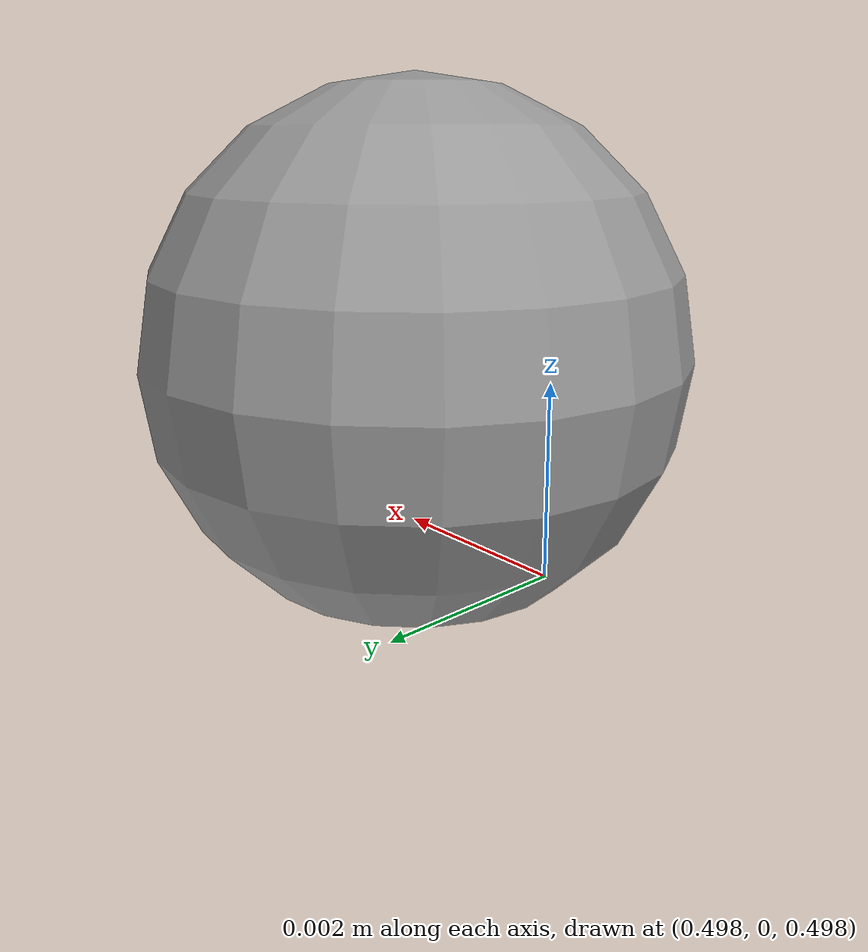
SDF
<?xml version="1.0" ?>

<sdf version="1.5">
  <model name="ball_bearing">
    <link name="link">
      <pose>0.5 0.0 0.5 0 0 0</pose>
      <inertial>
        <mass>0.0011</mass>
        <inertia>
          <ixx>3.96e-09</ixx>
          <ixy>0</ixy>
          <ixz>0</ixz>
          <iyy>3.96e-09</iyy>
          <iyz>0</iyz>
          <izz>3.96e-09</izz>
        </inertia>
      </inertial>

      <collision name="collision">
        <geometry>
          <sphere>
            <radius>0.003</radius>
          </sphere>
        </geometry>
        <surface>
          <contact>
            <!-- stainless steel 18-8 material properties -->
            <poissons_ratio>0.305</poissons_ratio>
            <elastic_modulus>2.0e+11</elastic_modulus>
            <ode>
              <kp>100000</kp>
              <kd>100</kd>
              <max_vel>100.0</max_vel>
              <min_depth>0.001</min_depth>
            </ode>
          </contact>
          <friction>
            <torsional>
              <coefficient>1.0</coefficient>
              <use_patch_radius>0</use_patch_radius>
              <surface_radius>0.01</surface_radius>
            </torsional>
          </friction>
        </surface>
      </collision>

      <visual name="visual">
        <geometry>
          <sphere>
            <radius>0.003</radius>
          </sphere>
        </geometry>
        <material>
          <script>
            <uri>file://media/materials/scripts/gazebo.material</uri>
            <name>Gazebo/Grey</name>
          </script>
        </material>
      </visual>

      <!-- approximate rolling friction -->
      <velocity_decay>
        <linear>0.00</linear>
        <angular>0.005</angular>
      </velocity_decay>
    </link>
  </model>
</sdf>
